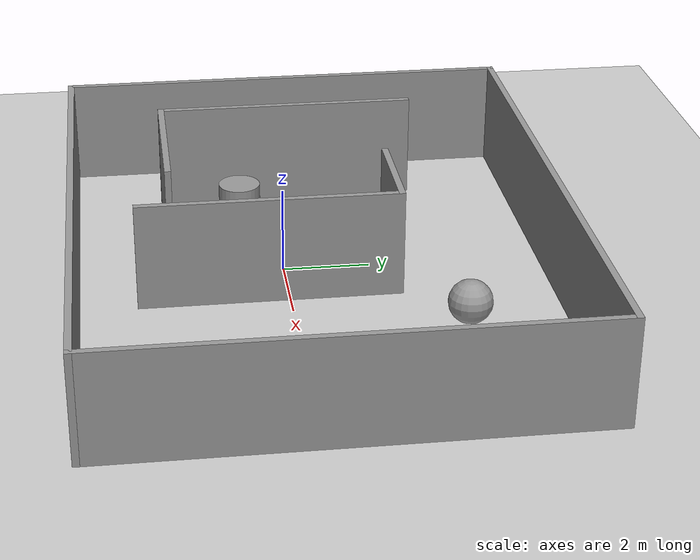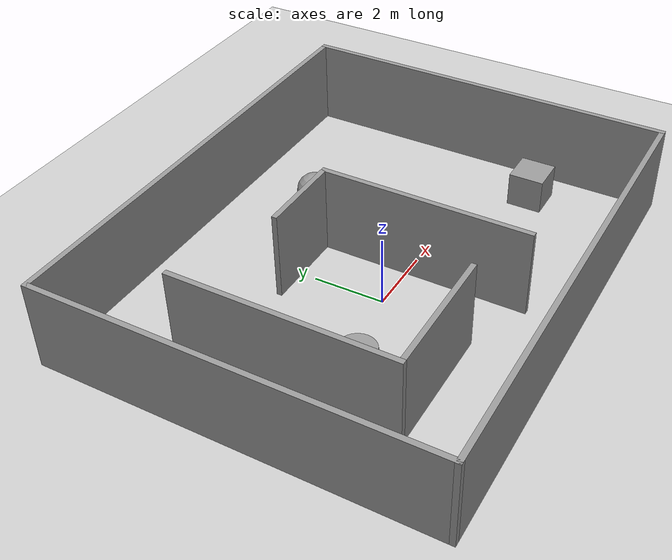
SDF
<sdf version="1.7">
 <world name="default">
  <light name="sun" type="directional">
   <pose>0 0 10 0 -0 0</pose>
   <diffuse>0.8 0.8 0.8 1</diffuse>
   <specular>0.2 0.2 0.2 1</specular>
   <attenuation>
    <range>1000</range>
    <constant>0.9</constant>
    <linear>0.01</linear>
    <quadratic>0.001</quadratic>
   </attenuation>
   <direction>-0.5 0.1 -0.9</direction>
   <spot><inner_angle>0</inner_angle><outer_angle>0</outer_angle><falloff>0</falloff></spot>
  </light>
  <model name="ground_plane">
   <static>1</static>
   <link name="link">
    <collision name="collision">
     <geometry><plane><normal>0 0 1</normal><size>100 100</size></plane></geometry>
     <surface>
      <contact><collide_bitmask>65535</collide_bitmask></contact>
      <friction><ode><mu>100</mu><mu2>50</mu2></ode></friction>
     </surface>
    </collision>
    <visual name="visual">
     <cast_shadows>0</cast_shadows>
     <geometry><plane><normal>0 0 1</normal><size>100 100</size></plane></geometry>
     <material>
      <script><uri>file://media/materials/scripts/gazebo.material</uri><name>Gazebo/Grey</name></script>
     </material>
    </visual>
   </link>
  </model>
  <gravity>0 0 -9.8</gravity>
  <magnetic_field>6e-06 2.3e-05 -4.2e-05</magnetic_field>
  <atmosphere type="adiabatic"/>
  <physics type="ode">
   <max_step_size>0.001</max_step_size>
   <real_time_factor>1</real_time_factor>
   <real_time_update_rate>1000</real_time_update_rate>
  </physics>
  <scene><ambient>0.4 0.4 0.4 1</ambient><background>0.7 0.7 0.7 1</background><shadows>1</shadows></scene>
  <spherical_coordinates>
   <surface_model>EARTH_WGS84</surface_model>
   <latitude_deg>0</latitude_deg>
   <longitude_deg>0</longitude_deg>
   <elevation>0</elevation>
   <heading_deg>0</heading_deg>
  </spherical_coordinates>
  <model name="maze">
   <pose>0.810131 0.646507 0 0 -0 0</pose>
   <link name="Wall_11">
    <collision name="Wall_11_Collision">
     <geometry><box><size>6.25 0.15 2.5</size></box></geometry>
     <pose>0 0 1.25 0 -0 0</pose>
    </collision>
    <visual name="Wall_11_Visual">
     <pose>0 0 1.25 0 -0 0</pose>
     <geometry><box><size>6.25 0.15 2.5</size></box></geometry>
     <material>
      <script><uri>file://media/materials/scripts/gazebo.material</uri><name>Gazebo/Grey</name></script>
      <ambient>1 1 1 1</ambient>
     </material>
     <meta><layer>0</layer></meta>
    </visual>
    <pose>-4.80372 -0.182583 0 0 -0 -1.5708</pose>
   </link>
   <link name="Wall_12">
    <collision name="Wall_12_Collision">
     <geometry><box><size>3.75 0.15 2.5</size></box></geometry>
     <pose>0 0 1.25 0 -0 0</pose>
    </collision>
    <visual name="Wall_12_Visual">
     <pose>0 0 1.25 0 -0 0</pose>
     <geometry><box><size>3.75 0.15 2.5</size></box></geometry>
     <material>
      <script><uri>file://media/materials/scripts/gazebo.material</uri><name>Gazebo/Grey</name></script>
      <ambient>1 1 1 1</ambient>
     </material>
     <meta><layer>0</layer></meta>
    </visual>
    <pose>-3.00372 -3.23258 0 0 -0 0</pose>
   </link>
   <link name="Wall_14">
    <collision name="Wall_14_Collision">
     <geometry><box><size>2.5 0.15 2.5</size></box></geometry>
     <pose>0 0 1.25 0 -0 0</pose>
    </collision>
    <visual name="Wall_14_Visual">
     <pose>0 0 1.25 0 -0 0</pose>
     <geometry><box><size>2.5 0.15 2.5</size></box></geometry>
     <material>
      <script><uri>file://media/materials/scripts/gazebo.material</uri><name>Gazebo/Grey</name></script>
      <ambient>1 1 1 1</ambient>
     </material>
     <meta><layer>0</layer></meta>
    </visual>
    <pose>-0.569694 1.85794 0 0 -0 0</pose>
   </link>
   <link name="Wall_15">
    <collision name="Wall_15_Collision">
     <geometry><box><size>6 0.15 2.5</size></box></geometry>
     <pose>0 0 1.25 0 -0 0</pose>
    </collision>
    <visual name="Wall_15_Visual">
     <pose>0 0 1.25 0 -0 0</pose>
     <geometry><box><size>6 0.15 2.5</size></box></geometry>
     <material>
      <script><uri>file://media/materials/scripts/gazebo.material</uri><name>Gazebo/Grey</name></script>
      <ambient>1 1 1 1</ambient>
     </material>
     <meta><layer>0</layer></meta>
    </visual>
    <pose>0.605306 -1.06706 0 0 -0 -1.5708</pose>
   </link>
   <link name="Wall_6">
    <collision name="Wall_6_Collision">
     <geometry><box><size>11 0.15 2.5</size></box></geometry>
     <pose>0 0 1.25 0 -0 0</pose>
    </collision>
    <visual name="Wall_6_Visual">
     <pose>0 0 1.25 0 -0 0</pose>
     <geometry><box><size>11 0.15 2.5</size></box></geometry>
     <material>
      <script><uri>file://media/materials/scripts/gazebo.material</uri><name>Gazebo/Grey</name></script>
      <ambient>1 1 1 1</ambient>
     </material>
     <meta><layer>0</layer></meta>
    </visual>
    <pose>-6.675 0 0 0 -0 1.5708</pose>
   </link>
   <link name="Wall_7">
    <collision name="Wall_7_Collision">
     <geometry><box><size>13.5 0.15 2.5</size></box></geometry>
     <pose>0 0 1.25 0 -0 0</pose>
    </collision>
    <visual name="Wall_7_Visual">
     <pose>0 0 1.25 0 -0 0</pose>
     <geometry><box><size>13.5 0.15 2.5</size></box></geometry>
     <material>
      <script><uri>file://media/materials/scripts/gazebo.material</uri><name>Gazebo/Grey</name></script>
      <ambient>1 1 1 1</ambient>
     </material>
     <meta><layer>0</layer></meta>
    </visual>
    <pose>0 5.425 0 0 -0 0</pose>
   </link>
   <link name="Wall_8">
    <collision name="Wall_8_Collision">
     <geometry><box><size>11 0.15 2.5</size></box></geometry>
     <pose>0 0 1.25 0 -0 0</pose>
    </collision>
    <visual name="Wall_8_Visual">
     <pose>0 0 1.25 0 -0 0</pose>
     <geometry><box><size>11 0.15 2.5</size></box></geometry>
     <material>
      <script><uri>file://media/materials/scripts/gazebo.material</uri><name>Gazebo/Grey</name></script>
      <ambient>1 1 1 1</ambient>
     </material>
     <meta><layer>0</layer></meta>
    </visual>
    <pose>6.675 0 0 0 -0 -1.5708</pose>
   </link>
   <link name="Wall_9">
    <collision name="Wall_9_Collision">
     <geometry><box><size>13.5 0.15 2.5</size></box></geometry>
     <pose>0 0 1.25 0 -0 0</pose>
    </collision>
    <visual name="Wall_9_Visual">
     <pose>0 0 1.25 0 -0 0</pose>
     <geometry><box><size>13.5 0.15 2.5</size></box></geometry>
     <material>
      <script><uri>file://media/materials/scripts/gazebo.material</uri><name>Gazebo/Grey</name></script>
      <ambient>1 1 1 1</ambient>
     </material>
     <meta><layer>0</layer></meta>
    </visual>
    <pose>0 -5.425 0 0 -0 3.14159</pose>
   </link>
   <static>1</static>
  </model>
  <model name="unit_box">
   <pose>6.14238 -1.61225 0.499995 0 1e-05 0</pose>
   <link name="link">
    <inertial>
     <mass>1</mass>
     <inertia>
      <ixx>0.166667</ixx>
      <ixy>0</ixy>
      <ixz>0</ixz>
      <iyy>0.166667</iyy>
      <iyz>0</iyz>
      <izz>0.166667</izz>
     </inertia>
    </inertial>
    <collision name="collision"><geometry><box><size>1 1 1</size></box></geometry></collision>
    <visual name="visual">
     <geometry><box><size>1 1 1</size></box></geometry>
     <material>
      <script><name>Gazebo/Grey</name><uri>file://media/materials/scripts/gazebo.material</uri></script>
     </material>
    </visual>
   </link>
  </model>
  <model name="unit_cylinder">
   <pose>-2.70888 -0.787569 0.499993 -3e-06 -4e-06 -0</pose>
   <link name="link">
    <inertial>
     <mass>1</mass>
     <inertia><ixx>0.145833</ixx><ixy>0</ixy><ixz>0</ixz><iyy>0.145833</iyy><iyz>0</iyz><izz>0.125</izz></inertia>
    </inertial>
    <collision name="collision">
     <geometry><cylinder><radius>0.5</radius><length>1</length></cylinder></geometry>
    </collision>
    <visual name="visual">
     <geometry><cylinder><radius>0.5</radius><length>1</length></cylinder></geometry>
     <material>
      <script><name>Gazebo/Grey</name><uri>file://media/materials/scripts/gazebo.material</uri></script>
     </material>
    </visual>
   </link>
  </model>
  <model name="unit_sphere">
   <pose>2.9511 3.8058 0.5 0 -0 0</pose>
   <link name="link">
    <inertial>
     <mass>1</mass>
     <inertia><ixx>0.1</ixx><ixy>0</ixy><ixz>0</ixz><iyy>0.1</iyy><iyz>0</iyz><izz>0.1</izz></inertia>
    </inertial>
    <collision name="collision"><geometry><sphere><radius>0.5</radius></sphere></geometry></collision>
    <visual name="visual">
     <geometry><sphere><radius>0.5</radius></sphere></geometry>
     <material>
      <script><name>Gazebo/Grey</name><uri>file://media/materials/scripts/gazebo.material</uri></script>
     </material>
    </visual>
   </link>
  </model>
 </world>
</sdf>
